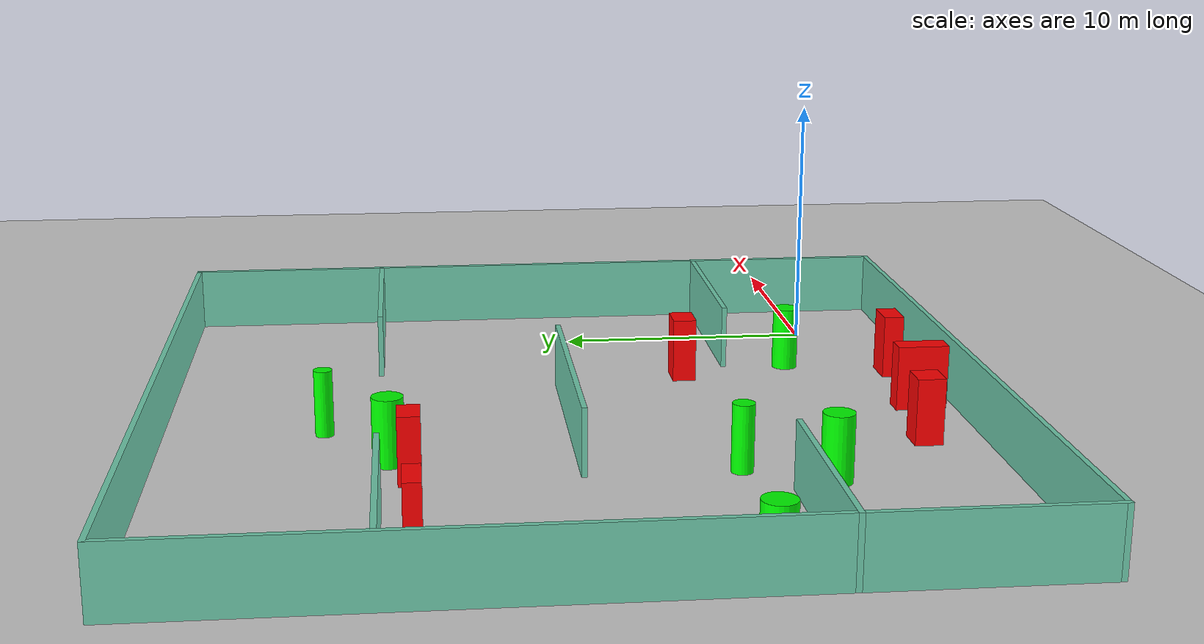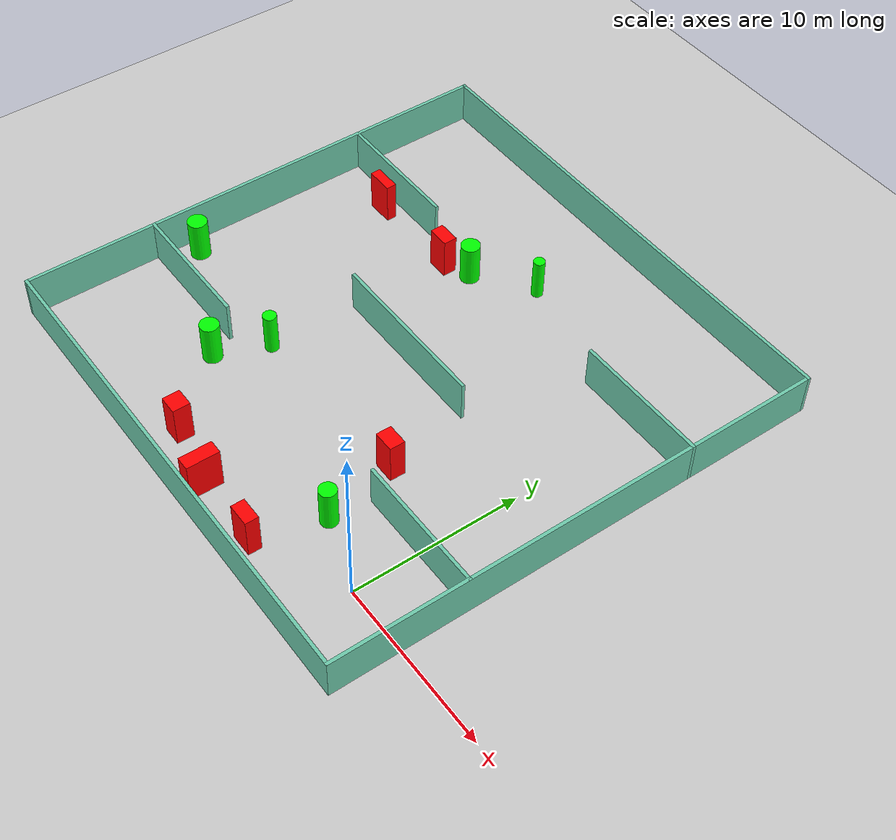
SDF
<sdf version="1.7">
 <world name="default">
  <light name="sun" type="directional">
   <pose>0 0 10 0 -0 0</pose>
   <diffuse>0.8 0.8 0.8 1</diffuse>
   <specular>0.2 0.2 0.2 1</specular>
   <attenuation>
    <range>1000</range>
    <constant>0.9</constant>
    <linear>0.01</linear>
    <quadratic>0.001</quadratic>
   </attenuation>
   <direction>-0.5 0.1 -0.9</direction>
   <spot><inner_angle>0</inner_angle><outer_angle>0</outer_angle><falloff>0</falloff></spot>
  </light>
  <model name="ground_plane">
   <static>1</static>
   <link name="link">
    <collision name="collision">
     <geometry><plane><normal>0 0 1</normal><size>100 100</size></plane></geometry>
     <surface>
      <contact><collide_bitmask>65535</collide_bitmask></contact>
      <friction><ode><mu>100</mu><mu2>50</mu2></ode></friction>
     </surface>
    </collision>
    <visual name="visual">
     <cast_shadows>0</cast_shadows>
     <geometry><plane><normal>0 0 1</normal><size>100 100</size></plane></geometry>
     <material>
      <script><uri>file://media/materials/scripts/gazebo.material</uri><name>Gazebo/Grey</name></script>
     </material>
    </visual>
   </link>
  </model>
  <gravity>0 0 -9.8</gravity>
  <magnetic_field>6e-06 2.3e-05 -4.2e-05</magnetic_field>
  <atmosphere type="adiabatic"/>
  <physics type="ode">
   <max_step_size>0.001</max_step_size>
   <real_time_factor>1</real_time_factor>
   <real_time_update_rate>1000</real_time_update_rate>
  </physics>
  <scene><ambient>0.4 0.4 0.4 1</ambient><background>0.7 0.7 0.7 1</background><shadows>1</shadows></scene>
  <spherical_coordinates>
   <surface_model>EARTH_WGS84</surface_model>
   <latitude_deg>0</latitude_deg>
   <longitude_deg>0</longitude_deg>
   <elevation>0</elevation>
   <heading_deg>0</heading_deg>
  </spherical_coordinates>
  <model name="my_base_walls">
   <link name="Wall_10">
    <collision name="Wall_10_Collision">
     <geometry><box><size>8.2 0.2 2.5</size></box></geometry>
     <pose>0 0 1.25 0 -0 0</pose>
    </collision>
    <visual name="Wall_10_Visual">
     <pose>0 0 1.25 0 -0 0</pose>
     <geometry><box><size>8.2 0.2 2.5</size></box></geometry>
     <material>
      <script><uri>file://media/materials/scripts/gazebo.material</uri><name>Gazebo/Grey</name></script>
      <ambient>0.435294 0.796078 0.67451 1</ambient>
     </material>
     <meta><layer>0</layer></meta>
    </visual>
    <pose>-11 -7 0 0 -0 0</pose>
   </link>
   <link name="Wall_12">
    <collision name="Wall_12_Collision">
     <geometry><box><size>8.2 0.2 2.5</size></box></geometry>
     <pose>0 0 1.25 0 -0 0</pose>
    </collision>
    <visual name="Wall_12_Visual">
     <pose>0 0 1.25 0 -0 0</pose>
     <geometry><box><size>8.2 0.2 2.5</size></box></geometry>
     <material>
      <script><uri>file://media/materials/scripts/gazebo.material</uri><name>Gazebo/Grey</name></script>
      <ambient>0.435294 0.796078 0.67451 1</ambient>
     </material>
     <meta><layer>0</layer></meta>
    </visual>
    <pose>-11 7 0 0 -0 0</pose>
   </link>
   <link name="Wall_14">
    <collision name="Wall_14_Collision">
     <geometry><box><size>8.2 0.2 2.5</size></box></geometry>
     <pose>0 0 1.25 0 -0 0</pose>
    </collision>
    <visual name="Wall_14_Visual">
     <pose>0 0 1.25 0 -0 0</pose>
     <geometry><box><size>8.2 0.2 2.5</size></box></geometry>
     <material>
      <script><uri>file://media/materials/scripts/gazebo.material</uri><name>Gazebo/Grey</name></script>
      <ambient>0.435294 0.796078 0.67451 1</ambient>
     </material>
     <meta><layer>0</layer></meta>
    </visual>
    <pose>11 7 0 0 -0 3.14159</pose>
   </link>
   <link name="Wall_16">
    <collision name="Wall_16_Collision">
     <geometry><box><size>10.2 0.2 2.5</size></box></geometry>
     <pose>0 0 1.25 0 -0 0</pose>
    </collision>
    <visual name="Wall_16_Visual">
     <pose>0 0 1.25 0 -0 0</pose>
     <geometry><box><size>10.2 0.2 2.5</size></box></geometry>
     <material>
      <script><uri>file://media/materials/scripts/gazebo.material</uri><name>Gazebo/Grey</name></script>
      <ambient>0.435294 0.796078 0.67451 1</ambient>
     </material>
     <meta><layer>0</layer></meta>
    </visual>
    <pose>0 0 0 0 -0 3.14159</pose>
   </link>
   <link name="Wall_2">
    <collision name="Wall_2_Collision">
     <geometry><box><size>30.2 0.2 2.5</size></box></geometry>
     <pose>0 0 1.25 0 -0 0</pose>
    </collision>
    <visual name="Wall_2_Visual">
     <pose>0 0 1.25 0 -0 0</pose>
     <geometry><box><size>30.2 0.2 2.5</size></box></geometry>
     <material>
      <script><uri>file://media/materials/scripts/gazebo.material</uri><name>Gazebo/Grey</name></script>
      <ambient>0.435294 0.796078 0.67451 1</ambient>
     </material>
     <meta><layer>0</layer></meta>
    </visual>
    <pose>0 -15 0 0 -0 3.14159</pose>
   </link>
   <link name="Wall_3">
    <collision name="Wall_3_Collision">
     <geometry><box><size>30.2 0.2 2.5</size></box></geometry>
     <pose>0 0 1.25 0 -0 0</pose>
    </collision>
    <visual name="Wall_3_Visual">
     <pose>0 0 1.25 0 -0 0</pose>
     <geometry><box><size>30.2 0.2 2.5</size></box></geometry>
     <material>
      <script><uri>file://media/materials/scripts/gazebo.material</uri><name>Gazebo/Grey</name></script>
      <ambient>0.435294 0.796078 0.67451 1</ambient>
     </material>
     <meta><layer>0</layer></meta>
    </visual>
    <pose>-15 0 0 0 -0 1.5708</pose>
   </link>
   <link name="Wall_4">
    <collision name="Wall_4_Collision">
     <geometry><box><size>30.2 0.2 2.5</size></box></geometry>
     <pose>0 0 1.25 0 -0 0</pose>
    </collision>
    <visual name="Wall_4_Visual">
     <pose>0 0 1.25 0 -0 0</pose>
     <geometry><box><size>30.2 0.2 2.5</size></box></geometry>
     <material>
      <script><uri>file://media/materials/scripts/gazebo.material</uri><name>Gazebo/Grey</name></script>
      <ambient>0.435294 0.796078 0.67451 1</ambient>
     </material>
     <meta><layer>0</layer></meta>
    </visual>
    <pose>0 15 0 0 -0 0</pose>
   </link>
   <link name="Wall_6">
    <collision name="Wall_6_Collision">
     <geometry><box><size>30.2 0.2 2.5</size></box></geometry>
     <pose>0 0 1.25 0 -0 0</pose>
    </collision>
    <visual name="Wall_6_Visual">
     <pose>0 0 1.25 0 -0 0</pose>
     <geometry><box><size>30.2 0.2 2.5</size></box></geometry>
     <material>
      <script><uri>file://media/materials/scripts/gazebo.material</uri><name>Gazebo/Grey</name></script>
      <ambient>0.435294 0.796078 0.67451 1</ambient>
     </material>
     <meta><layer>0</layer></meta>
    </visual>
    <pose>15 0 0 0 -0 1.5708</pose>
   </link>
   <link name="Wall_8">
    <collision name="Wall_8_Collision">
     <geometry><box><size>8.2 0.2 2.5</size></box></geometry>
     <pose>0 0 1.25 0 -0 0</pose>
    </collision>
    <visual name="Wall_8_Visual">
     <pose>0 0 1.25 0 -0 0</pose>
     <geometry><box><size>8.2 0.2 2.5</size></box></geometry>
     <material>
      <script><uri>file://media/materials/scripts/gazebo.material</uri><name>Gazebo/Grey</name></script>
      <ambient>0.435294 0.796078 0.67451 1</ambient>
     </material>
     <meta><layer>0</layer></meta>
    </visual>
    <pose>11 -7 0 0 -0 3.14159</pose>
   </link>
   <static>1</static>
   <pose>-11 11 0 0 -0 0</pose>
  </model>
  <model name="cylinder1">
   <static>1</static>
   <link name="link">
    <inertial>
     <mass>1</mass>
     <inertia><ixx>0.5</ixx><ixy>0</ixy><ixz>0</ixz><iyy>0.5</iyy><iyz>0</iyz><izz>1</izz></inertia>
    </inertial>
    <collision name="collision">
     <geometry><cylinder><radius>0.5640014426167945</radius><length>2.5</length></cylinder></geometry>
    </collision>
    <visual name="visual">
     <geometry><cylinder><radius>0.5640014426167945</radius><length>2.5</length></cylinder></geometry>
     <material>
      <ambient>0 1 0 1</ambient>
      <diffuse>0 1 0 1</diffuse>
      <specular>0.1 0.1 0.1 1</specular>
      <emissive>0 0 0 0</emissive>
     </material>
    </visual>
   </link>
   <pose>-17.348362765771306 2.498676226144033 1.25 0 0 0</pose>
  </model>
  <model name="cylinder2">
   <static>1</static>
   <link name="link">
    <inertial>
     <mass>1</mass>
     <inertia><ixx>0.5</ixx><ixy>0</ixy><ixz>0</ixz><iyy>0.5</iyy><iyz>0</iyz><izz>1</izz></inertia>
    </inertial>
    <collision name="collision">
     <geometry><cylinder><radius>0.34046507402495535</radius><length>2.5</length></cylinder></geometry>
    </collision>
    <visual name="visual">
     <geometry><cylinder><radius>0.34046507402495535</radius><length>2.5</length></cylinder></geometry>
     <material>
      <ambient>0 1 0 1</ambient>
      <diffuse>0 1 0 1</diffuse>
      <specular>0.1 0.1 0.1 1</specular>
      <emissive>0 0 0 0</emissive>
     </material>
    </visual>
   </link>
   <pose>-10.945236167484298 20.01426489577262 1.25 0 0 0</pose>
  </model>
  <model name="cylinder3">
   <static>1</static>
   <link name="link">
    <inertial>
     <mass>1</mass>
     <inertia><ixx>0.5</ixx><ixy>0</ixy><ixz>0</ixz><iyy>0.5</iyy><iyz>0</iyz><izz>1</izz></inertia>
    </inertial>
    <collision name="collision">
     <geometry><cylinder><radius>0.5677400192384501</radius><length>2.5</length></cylinder></geometry>
    </collision>
    <visual name="visual">
     <geometry><cylinder><radius>0.5677400192384501</radius><length>2.5</length></cylinder></geometry>
     <material>
      <ambient>0 1 0 1</ambient>
      <diffuse>0 1 0 1</diffuse>
      <specular>0.1 0.1 0.1 1</specular>
      <emissive>0 0 0 0</emissive>
     </material>
    </visual>
   </link>
   <pose>-14.20149497886877 17.670071879988804 1.25 0 0 0</pose>
  </model>
  <model name="cylinder4">
   <static>1</static>
   <link name="link">
    <inertial>
     <mass>1</mass>
     <inertia><ixx>0.5</ixx><ixy>0</ixy><ixz>0</ixz><iyy>0.5</iyy><iyz>0</iyz><izz>1</izz></inertia>
    </inertial>
    <collision name="collision">
     <geometry><cylinder><radius>0.5871703906826502</radius><length>2.5</length></cylinder></geometry>
    </collision>
    <visual name="visual">
     <geometry><cylinder><radius>0.5871703906826502</radius><length>2.5</length></cylinder></geometry>
     <material>
      <ambient>0 1 0 1</ambient>
      <diffuse>0 1 0 1</diffuse>
      <specular>0.1 0.1 0.1 1</specular>
      <emissive>0 0 0 0</emissive>
     </material>
    </visual>
   </link>
   <pose>-24.81270691082291 6.1317896121021604 1.25 0 0 0</pose>
  </model>
  <model name="cylinder5">
   <static>1</static>
   <link name="link">
    <inertial>
     <mass>1</mass>
     <inertia><ixx>0.5</ixx><ixy>0</ixy><ixz>0</ixz><iyy>0.5</iyy><iyz>0</iyz><izz>1</izz></inertia>
    </inertial>
    <collision name="collision">
     <geometry><cylinder><radius>0.39744091548840327</radius><length>2.5</length></cylinder></geometry>
    </collision>
    <visual name="visual">
     <geometry><cylinder><radius>0.39744091548840327</radius><length>2.5</length></cylinder></geometry>
     <material>
      <ambient>0 1 0 1</ambient>
      <diffuse>0 1 0 1</diffuse>
      <specular>0.1 0.1 0.1 1</specular>
      <emissive>0 0 0 0</emissive>
     </material>
    </visual>
   </link>
   <pose>-16.052810549686384 5.508943144486766 1.25 0 0 0</pose>
  </model>
  <model name="cylinder6">
   <static>1</static>
   <link name="link">
    <inertial>
     <mass>1</mass>
     <inertia><ixx>0.5</ixx><ixy>0</ixy><ixz>0</ixz><iyy>0.5</iyy><iyz>0</iyz><izz>1</izz></inertia>
    </inertial>
    <collision name="collision">
     <geometry><cylinder><radius>0.5000944107906656</radius><length>2.5</length></cylinder></geometry>
    </collision>
    <visual name="visual">
     <geometry><cylinder><radius>0.5000944107906656</radius><length>2.5</length></cylinder></geometry>
     <material>
      <ambient>0 1 0 1</ambient>
      <diffuse>0 1 0 1</diffuse>
      <specular>0.1 0.1 0.1 1</specular>
      <emissive>0 0 0 0</emissive>
     </material>
    </visual>
   </link>
   <pose>-4.275337857381393 1.492586178292238 1.25 0 0 0</pose>
  </model>
  <model name="box1">
   <static>1</static>
   <link name="link">
    <inertial>
     <mass>1</mass>
     <inertia><ixx>0.083</ixx><ixy>0</ixy><ixz>0</ixz><iyy>0.083</iyy><iyz>0</iyz><izz>0.083</izz></inertia>
    </inertial>
    <collision name="collision">
     <geometry><box><size>1.6515019629999095 0.6152355751841827 2.5</size></box></geometry>
    </collision>
    <visual name="visual">
     <geometry><box><size>1.6515019629999095 0.6152355751841827 2.5</size></box></geometry>
     <material>
      <ambient>1 0 0 1</ambient>
      <diffuse>1 0 0 1</diffuse>
      <specular>0.1 0.1 0.1 1</specular>
      <emissive>0 0 0 0</emissive>
     </material>
    </visual>
    <sensor name="my_contact" type="contact">
     <contact><collision>box_collision</collision><topic>__default_topic__</topic></contact>
    </sensor>
   </link>
   <pose>-21.67315981529079 16.886557786772567 1.25 0 0 0</pose>
  </model>
  <model name="box2">
   <static>1</static>
   <link name="link">
    <inertial>
     <mass>1</mass>
     <inertia><ixx>0.083</ixx><ixy>0</ixy><ixz>0</ixz><iyy>0.083</iyy><iyz>0</iyz><izz>0.083</izz></inertia>
    </inertial>
    <collision name="collision">
     <geometry><box><size>1.311993978545554 0.8125187154366889 2.5</size></box></geometry>
    </collision>
    <visual name="visual">
     <geometry><box><size>1.311993978545554 0.8125187154366889 2.5</size></box></geometry>
     <material>
      <ambient>1 0 0 1</ambient>
      <diffuse>1 0 0 1</diffuse>
      <specular>0.1 0.1 0.1 1</specular>
      <emissive>0 0 0 0</emissive>
     </material>
    </visual>
    <sensor name="my_contact" type="contact">
     <contact><collision>box_collision</collision><topic>__default_topic__</topic></contact>
    </sensor>
   </link>
   <pose>-15.798836558193972 16.953633192964528 1.25 0 0 0</pose>
  </model>
  <model name="box3">
   <static>1</static>
   <link name="link">
    <inertial>
     <mass>1</mass>
     <inertia><ixx>0.083</ixx><ixy>0</ixy><ixz>0</ixz><iyy>0.083</iyy><iyz>0</iyz><izz>0.083</izz></inertia>
    </inertial>
    <collision name="collision">
     <geometry><box><size>1.1289909858895384 1.0362619741932855 2.5</size></box></geometry>
    </collision>
    <visual name="visual">
     <geometry><box><size>1.1289909858895384 1.0362619741932855 2.5</size></box></geometry>
     <material>
      <ambient>1 0 0 1</ambient>
      <diffuse>1 0 0 1</diffuse>
      <specular>0.1 0.1 0.1 1</specular>
      <emissive>0 0 0 0</emissive>
     </material>
    </visual>
    <sensor name="my_contact" type="contact">
     <contact><collision>box_collision</collision><topic>__default_topic__</topic></contact>
    </sensor>
   </link>
   <pose>-13.602244597743063 -1.6800744185499963 1.25 0 0 0</pose>
  </model>
  <model name="box4">
   <static>1</static>
   <link name="link">
    <inertial>
     <mass>1</mass>
     <inertia><ixx>0.083</ixx><ixy>0</ixy><ixz>0</ixz><iyy>0.083</iyy><iyz>0</iyz><izz>0.083</izz></inertia>
    </inertial>
    <collision name="collision">
     <geometry><box><size>1.2540441030093794 0.9101523292416445 2.5</size></box></geometry>
    </collision>
    <visual name="visual">
     <geometry><box><size>1.2540441030093794 0.9101523292416445 2.5</size></box></geometry>
     <material>
      <ambient>1 0 0 1</ambient>
      <diffuse>1 0 0 1</diffuse>
      <specular>0.1 0.1 0.1 1</specular>
      <emissive>0 0 0 0</emissive>
     </material>
    </visual>
    <sensor name="my_contact" type="contact">
     <contact><collision>box_collision</collision><topic>__default_topic__</topic></contact>
    </sensor>
   </link>
   <pose>-5.210821198162602 5.904179047275267 1.25 0 0 0</pose>
  </model>
  <model name="box5">
   <static>1</static>
   <link name="link">
    <inertial>
     <mass>1</mass>
     <inertia><ixx>0.083</ixx><ixy>0</ixy><ixz>0</ixz><iyy>0.083</iyy><iyz>0</iyz><izz>0.083</izz></inertia>
    </inertial>
    <collision name="collision">
     <geometry><box><size>1.3500174347381568 0.7887893300741186 2.5</size></box></geometry>
    </collision>
    <visual name="visual">
     <geometry><box><size>1.3500174347381568 0.7887893300741186 2.5</size></box></geometry>
     <material>
      <ambient>1 0 0 1</ambient>
      <diffuse>1 0 0 1</diffuse>
      <specular>0.1 0.1 0.1 1</specular>
      <emissive>0 0 0 0</emissive>
     </material>
    </visual>
    <sensor name="my_contact" type="contact">
     <contact><collision>box_collision</collision><topic>__default_topic__</topic></contact>
    </sensor>
   </link>
   <pose>-5.468499474415127 -2.5399121349736227 1.25 0 0 0</pose>
  </model>
  <model name="box6">
   <static>1</static>
   <link name="link">
    <inertial>
     <mass>1</mass>
     <inertia><ixx>0.083</ixx><ixy>0</ixy><ixz>0</ixz><iyy>0.083</iyy><iyz>0</iyz><izz>0.083</izz></inertia>
    </inertial>
    <collision name="collision">
     <geometry><box><size>0.8301508639442952 1.9521221132765232 2.5</size></box></geometry>
    </collision>
    <visual name="visual">
     <geometry><box><size>0.8301508639442952 1.9521221132765232 2.5</size></box></geometry>
     <material>
      <ambient>1 0 0 1</ambient>
      <diffuse>1 0 0 1</diffuse>
      <specular>0.1 0.1 0.1 1</specular>
      <emissive>0 0 0 0</emissive>
     </material>
    </visual>
    <sensor name="my_contact" type="contact">
     <contact><collision>box_collision</collision><topic>__default_topic__</topic></contact>
    </sensor>
   </link>
   <pose>-9.816202948533991 -2.5432417104918876 1.25 0 0 0</pose>
  </model>
 </world>
</sdf>
